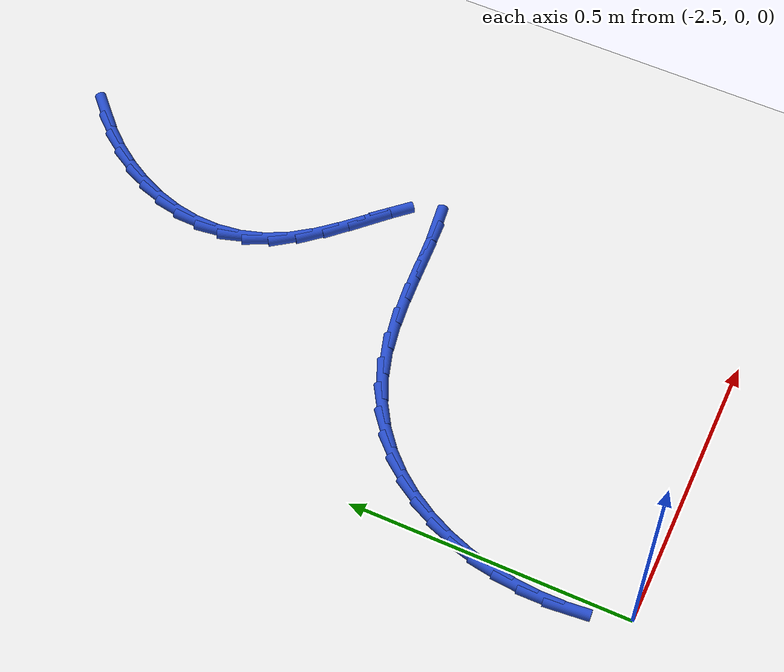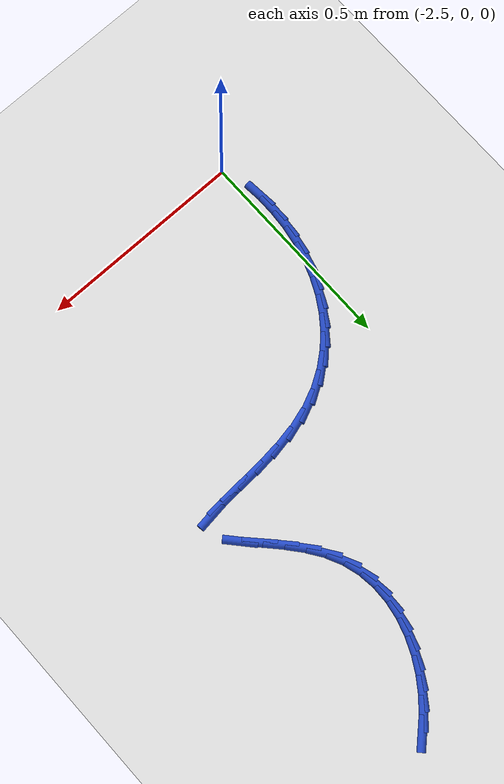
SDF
<sdf version="1.6">
 <world name="default">
  <model name="ground_plane">
   <static>1</static>
   <link name="link">
    <collision name="collision">
     <geometry><plane><normal>0 0 1</normal><size>100 100</size></plane></geometry>
     <surface><friction><ode><mu>100</mu><mu2>50</mu2></ode></friction></surface>
    </collision>
    <visual name="visual">
     <cast_shadows>0</cast_shadows>
     <geometry><plane><normal>0 0 1</normal><size>100 100</size></plane></geometry>
     <material>
      <script><uri>file://media/materials/scripts/gazebo.material</uri><name>Gazebo/WhiteGlow</name></script>
     </material>
    </visual>
   </link>
  </model>
  <model name="line">
   <link name="link_70">
    <pose>-1.9767544843478186 1.237692580501354 0.01 0 1.57 0.7592291743797539</pose>
    <collision name="collision">
     <geometry><cylinder><radius>0.01</radius><length>0.08</length></cylinder></geometry>
    </collision>
    <visual name="visual">
     <material>
      <script><name>Gazebo/Blue</name><uri>file://media/materials/scripts/gazebo.material</uri></script>
     </material>
     <geometry><cylinder><radius>0.01</radius><length>0.08</length></cylinder></geometry>
    </visual>
   </link>
   <link name="link_71">
    <pose>-2.007096831347578 1.2088981368848986 0.01 0 1.57 0.8576048717542797</pose>
    <collision name="collision">
     <geometry><cylinder><radius>0.01</radius><length>0.08</length></cylinder></geometry>
    </collision>
    <visual name="visual">
     <material>
      <script><name>Gazebo/Blue</name><uri>file://media/materials/scripts/gazebo.material</uri></script>
     </material>
     <geometry><cylinder><radius>0.01</radius><length>0.08</length></cylinder></geometry>
    </visual>
   </link>
   <link name="link_72">
    <pose>-2.035062959149668 1.176570837063848 0.01 0 1.57 0.9554254708043374</pose>
    <collision name="collision">
     <geometry><cylinder><radius>0.01</radius><length>0.08</length></cylinder></geometry>
    </collision>
    <visual name="visual">
     <material>
      <script><name>Gazebo/Blue</name><uri>file://media/materials/scripts/gazebo.material</uri></script>
     </material>
     <geometry><cylinder><radius>0.01</radius><length>0.08</length></cylinder></geometry>
    </visual>
   </link>
   <link name="link_73">
    <pose>-2.0600514864535526 1.1412235613860628 0.01 0 1.57 1.056072839593738</pose>
    <collision name="collision">
     <geometry><cylinder><radius>0.01</radius><length>0.08</length></cylinder></geometry>
    </collision>
    <visual name="visual">
     <material>
      <script><name>Gazebo/Blue</name><uri>file://media/materials/scripts/gazebo.material</uri></script>
     </material>
     <geometry><cylinder><radius>0.01</radius><length>0.08</length></cylinder></geometry>
    </visual>
   </link>
   <link name="link_74">
    <pose>-2.081461031958693 1.1033691901994038 0.01 0 1.57 1.1627030110061976</pose>
    <collision name="collision">
     <geometry><cylinder><radius>0.01</radius><length>0.08</length></cylinder></geometry>
    </collision>
    <visual name="visual">
     <material>
      <script><name>Gazebo/Blue</name><uri>file://media/materials/scripts/gazebo.material</uri></script>
     </material>
     <geometry><cylinder><radius>0.01</radius><length>0.08</length></cylinder></geometry>
    </visual>
   </link>
   <link name="link_75">
    <pose>-2.098690214364553 1.0635206038517315 0.01 0 1.57 1.27826414009599</pose>
    <collision name="collision">
     <geometry><cylinder><radius>0.01</radius><length>0.08</length></cylinder></geometry>
    </collision>
    <visual name="visual">
     <material>
      <script><name>Gazebo/Blue</name><uri>file://media/materials/scripts/gazebo.material</uri></script>
     </material>
     <geometry><cylinder><radius>0.01</radius><length>0.08</length></cylinder></geometry>
    </visual>
   </link>
   <link name="link_76">
    <pose>-2.111137652370596 1.0221906826909055 0.01 0 1.57 1.405312220309387</pose>
    <collision name="collision">
     <geometry><cylinder><radius>0.01</radius><length>0.08</length></cylinder></geometry>
    </collision>
    <visual name="visual">
     <material>
      <script><name>Gazebo/Blue</name><uri>file://media/materials/scripts/gazebo.material</uri></script>
     </material>
     <geometry><cylinder><radius>0.01</radius><length>0.08</length></cylinder></geometry>
    </visual>
   </link>
   <link name="link_77">
    <pose>-2.118201964676284 0.9798923070647879 0.01 0 1.57 1.5455454247379714</pose>
    <collision name="collision">
     <geometry><cylinder><radius>0.01</radius><length>0.08</length></cylinder></geometry>
    </collision>
    <visual name="visual">
     <material>
      <script><name>Gazebo/Blue</name><uri>file://media/materials/scripts/gazebo.material</uri></script>
     </material>
     <geometry><cylinder><radius>0.01</radius><length>0.08</length></cylinder></geometry>
    </visual>
   </link>
   <link name="link_78">
    <pose>-2.119281769981081 0.9371383573212388 0.01 0 1.57 -1.4425459288353755</pose>
    <collision name="collision">
     <geometry><cylinder><radius>0.01</radius><length>0.08</length></cylinder></geometry>
    </collision>
    <visual name="visual">
     <material>
      <script><name>Gazebo/Blue</name><uri>file://media/materials/scripts/gazebo.material</uri></script>
     </material>
     <geometry><cylinder><radius>0.01</radius><length>0.08</length></cylinder></geometry>
    </visual>
   </link>
   <link name="link_79">
    <pose>-2.1137756869844493 0.8944417138081177 0.01 0 1.57 -1.278133128932933</pose>
    <collision name="collision">
     <geometry><cylinder><radius>0.01</radius><length>0.08</length></cylinder></geometry>
    </collision>
    <visual name="visual">
     <material>
      <script><name>Gazebo/Blue</name><uri>file://media/materials/scripts/gazebo.material</uri></script>
     </material>
     <geometry><cylinder><radius>0.01</radius><length>0.08</length></cylinder></geometry>
    </visual>
   </link>
   <link name="link_80">
    <pose>-2.1010823343858505 0.8523152568732862 0.01 0 1.57 -1.108243184468283</pose>
    <collision name="collision">
     <geometry><cylinder><radius>0.01</radius><length>0.08</length></cylinder></geometry>
    </collision>
    <visual name="visual">
     <material>
      <script><name>Gazebo/Blue</name><uri>file://media/materials/scripts/gazebo.material</uri></script>
     </material>
     <geometry><cylinder><radius>0.01</radius><length>0.08</length></cylinder></geometry>
    </visual>
   </link>
   <link name="link_81">
    <pose>-2.080616970885217 0.8112722908518365 0.01 0 1.57 -0.9617065921817991</pose>
    <collision name="collision">
     <geometry><cylinder><radius>0.01</radius><length>0.08</length></cylinder></geometry>
    </collision>
    <visual name="visual">
     <material>
      <script><name>Gazebo/Blue</name><uri>file://media/materials/scripts/gazebo.material</uri></script>
     </material>
     <geometry><cylinder><radius>0.01</radius><length>0.08</length></cylinder></geometry>
    </visual>
   </link>
   <link name="link_82">
    <pose>-2.053124340687858 0.7718599953710827 0.01 0 1.57 -0.867904822204166</pose>
    <collision name="collision">
     <geometry><cylinder><radius>0.01</radius><length>0.08</length></cylinder></geometry>
    </collision>
    <visual name="visual">
     <material>
      <script><name>Gazebo/Blue</name><uri>file://media/materials/scripts/gazebo.material</uri></script>
     </material>
     <geometry><cylinder><radius>0.01</radius><length>0.08</length></cylinder></geometry>
    </visual>
   </link>
   <link name="link_83">
    <pose>-2.0216268749019872 0.7346835855232764 0.01 0 1.57 -0.8165272662750818</pose>
    <collision name="collision">
     <geometry><cylinder><radius>0.01</radius><length>0.08</length></cylinder></geometry>
    </collision>
    <visual name="visual">
     <material>
      <script><name>Gazebo/Blue</name><uri>file://media/materials/scripts/gazebo.material</uri></script>
     </material>
     <geometry><cylinder><radius>0.01</radius><length>0.08</length></cylinder></geometry>
    </visual>
   </link>
   <link name="link_84">
    <pose>-1.9893706910978315 0.7003539759319802 0.01 0 1.57 -0.8035870891360066</pose>
    <collision name="collision">
     <geometry><cylinder><radius>0.01</radius><length>0.08</length></cylinder></geometry>
    </collision>
    <visual name="visual">
     <material>
      <script><name>Gazebo/Blue</name><uri>file://media/materials/scripts/gazebo.material</uri></script>
     </material>
     <geometry><cylinder><radius>0.01</radius><length>0.08</length></cylinder></geometry>
    </visual>
   </link>
   <link name="link_85">
    <pose>-1.9596019068456187 0.6694820812207571 0.01 0 1.57 -0.8397913096755745</pose>
    <collision name="collision">
     <geometry><cylinder><radius>0.01</radius><length>0.08</length></cylinder></geometry>
    </collision>
    <visual name="visual">
     <material>
      <script><name>Gazebo/Blue</name><uri>file://media/materials/scripts/gazebo.material</uri></script>
     </material>
     <geometry><cylinder><radius>0.01</radius><length>0.08</length></cylinder></geometry>
    </visual>
   </link>
   <link name="link_90">
    <pose>-1.9523762090224026 0.5850980706292066 0.01 0 1.57 0.12566828416263573</pose>
    <collision name="collision">
     <geometry><cylinder><radius>0.01</radius><length>0.08</length></cylinder></geometry>
    </collision>
    <visual name="visual">
     <material>
      <script><name>Gazebo/Blue</name><uri>file://media/materials/scripts/gazebo.material</uri></script>
     </material>
     <geometry><cylinder><radius>0.01</radius><length>0.08</length></cylinder></geometry>
    </visual>
   </link>
   <link name="link_91">
    <pose>-1.9859479654082999 0.5808568153666116 0.01 0 1.57 0.0632473104853528</pose>
    <collision name="collision">
     <geometry><cylinder><radius>0.01</radius><length>0.08</length></cylinder></geometry>
    </collision>
    <visual name="visual">
     <material>
      <script><name>Gazebo/Blue</name><uri>file://media/materials/scripts/gazebo.material</uri></script>
     </material>
     <geometry><cylinder><radius>0.01</radius><length>0.08</length></cylinder></geometry>
    </visual>
   </link>
   <link name="link_92">
    <pose>-2.0273398980832846 0.5782353905893374 0.01 0 1.57 0.04939245278671325</pose>
    <collision name="collision">
     <geometry><cylinder><radius>0.01</radius><length>0.08</length></cylinder></geometry>
    </collision>
    <visual name="visual">
     <material>
      <script><name>Gazebo/Blue</name><uri>file://media/materials/scripts/gazebo.material</uri></script>
     </material>
     <geometry><cylinder><radius>0.01</radius><length>0.08</length></cylinder></geometry>
    </visual>
   </link>
   <link name="link_93">
    <pose>-2.0743060860869513 0.5759137270707475 0.01 0 1.57 0.06635048256645906</pose>
    <collision name="collision">
     <geometry><cylinder><radius>0.01</radius><length>0.08</length></cylinder></geometry>
    </collision>
    <visual name="visual">
     <material>
      <script><name>Gazebo/Blue</name><uri>file://media/materials/scripts/gazebo.material</uri></script>
     </material>
     <geometry><cylinder><radius>0.01</radius><length>0.08</length></cylinder></geometry>
    </visual>
   </link>
   <link name="link_94">
    <pose>-2.124600608458899 0.5725717555842054 0.01 0 1.57 0.11015346056883517</pose>
    <collision name="collision">
     <geometry><cylinder><radius>0.01</radius><length>0.08</length></cylinder></geometry>
    </collision>
    <visual name="visual">
     <material>
      <script><name>Gazebo/Blue</name><uri>file://media/materials/scripts/gazebo.material</uri></script>
     </material>
     <geometry><cylinder><radius>0.01</radius><length>0.08</length></cylinder></geometry>
    </visual>
   </link>
   <link name="link_95">
    <pose>-2.175977544238724 0.5668894069030745 0.01 0 1.57 0.18395812294698327</pose>
    <collision name="collision">
     <geometry><cylinder><radius>0.01</radius><length>0.08</length></cylinder></geometry>
    </collision>
    <visual name="visual">
     <material>
      <script><name>Gazebo/Blue</name><uri>file://media/materials/scripts/gazebo.material</uri></script>
     </material>
     <geometry><cylinder><radius>0.01</radius><length>0.08</length></cylinder></geometry>
    </visual>
   </link>
   <link name="link_96">
    <pose>-2.2261909724660227 0.5575466118007191 0.01 0 1.57 0.2942550114862895</pose>
    <collision name="collision">
     <geometry><cylinder><radius>0.01</radius><length>0.08</length></cylinder></geometry>
    </collision>
    <visual name="visual">
     <material>
      <script><name>Gazebo/Blue</name><uri>file://media/materials/scripts/gazebo.material</uri></script>
     </material>
     <geometry><cylinder><radius>0.01</radius><length>0.08</length></cylinder></geometry>
    </visual>
   </link>
   <link name="link_97">
    <pose>-2.2731239835218977 0.5433234395034396 0.01 0 1.57 0.4227066299343336</pose>
    <collision name="collision">
     <geometry><cylinder><radius>0.01</radius><length>0.08</length></cylinder></geometry>
    </collision>
    <visual name="visual">
     <material>
      <script><name>Gazebo/Blue</name><uri>file://media/materials/scripts/gazebo.material</uri></script>
     </material>
     <geometry><cylinder><radius>0.01</radius><length>0.08</length></cylinder></geometry>
    </visual>
   </link>
   <link name="link_98">
    <pose>-2.315997147198804 0.5240381091980478 0.01 0 1.57 0.5520699394514305</pose>
    <collision name="collision">
     <geometry><cylinder><radius>0.01</radius><length>0.08</length></cylinder></geometry>
    </collision>
    <visual name="visual">
     <material>
      <script><name>Gazebo/Blue</name><uri>file://media/materials/scripts/gazebo.material</uri></script>
     </material>
     <geometry><cylinder><radius>0.01</radius><length>0.08</length></cylinder></geometry>
    </visual>
   </link>
   <link name="link_99">
    <pose>-2.3548226372790286 0.5001232821657957 0.01 0 1.57 0.6793388754209444</pose>
    <collision name="collision">
     <geometry><cylinder><radius>0.01</radius><length>0.08</length></cylinder></geometry>
    </collision>
    <visual name="visual">
     <material>
      <script><name>Gazebo/Blue</name><uri>file://media/materials/scripts/gazebo.material</uri></script>
     </material>
     <geometry><cylinder><radius>0.01</radius><length>0.08</length></cylinder></geometry>
    </visual>
   </link>
   <link name="link_100">
    <pose>-2.3896229586753694 0.47201963869940017 0.01 0 1.57 0.8022222973451397</pose>
    <collision name="collision">
     <geometry><cylinder><radius>0.01</radius><length>0.08</length></cylinder></geometry>
    </collision>
    <visual name="visual">
     <material>
      <script><name>Gazebo/Blue</name><uri>file://media/materials/scripts/gazebo.material</uri></script>
     </material>
     <geometry><cylinder><radius>0.01</radius><length>0.08</length></cylinder></geometry>
    </visual>
   </link>
   <link name="link_101">
    <pose>-2.420420616300628 0.4401678590915779 0.01 0 1.57 0.9191887726935113</pose>
    <collision name="collision">
     <geometry><cylinder><radius>0.01</radius><length>0.08</length></cylinder></geometry>
    </collision>
    <visual name="visual">
     <material>
      <script><name>Gazebo/Blue</name><uri>file://media/materials/scripts/gazebo.material</uri></script>
     </material>
     <geometry><cylinder><radius>0.01</radius><length>0.08</length></cylinder></geometry>
    </visual>
   </link>
   <link name="link_102">
    <pose>-2.4472381150676026 0.4050086236350471 0.01 0 1.57 1.0295218484912654</pose>
    <collision name="collision">
     <geometry><cylinder><radius>0.01</radius><length>0.08</length></cylinder></geometry>
    </collision>
    <visual name="visual">
     <material>
      <script><name>Gazebo/Blue</name><uri>file://media/materials/scripts/gazebo.material</uri></script>
     </material>
     <geometry><cylinder><radius>0.01</radius><length>0.08</length></cylinder></geometry>
    </visual>
   </link>
   <link name="link_103">
    <pose>-2.470097959889092 0.36698261262252446 0.01 0 1.57 1.133214566473836</pose>
    <collision name="collision">
     <geometry><cylinder><radius>0.01</radius><length>0.08</length></cylinder></geometry>
    </collision>
    <visual name="visual">
     <material>
      <script><name>Gazebo/Blue</name><uri>file://media/materials/scripts/gazebo.material</uri></script>
     </material>
     <geometry><cylinder><radius>0.01</radius><length>0.08</length></cylinder></geometry>
    </visual>
   </link>
   <link name="link_104">
    <pose>-2.489022655677898 0.3265305063467271 0.01 0 1.57 1.2307893025706986</pose>
    <collision name="collision">
     <geometry><cylinder><radius>0.01</radius><length>0.08</length></cylinder></geometry>
    </collision>
    <visual name="visual">
     <material>
      <script><name>Gazebo/Blue</name><uri>file://media/materials/scripts/gazebo.material</uri></script>
     </material>
     <geometry><cylinder><radius>0.01</radius><length>0.08</length></cylinder></geometry>
    </visual>
   </link>
   <link name="link_105">
    <pose>-2.5040347073468183 0.2840929851003724 0.01 0 1.57 1.3231157649034964</pose>
    <collision name="collision">
     <geometry><cylinder><radius>0.01</radius><length>0.08</length></cylinder></geometry>
    </collision>
    <visual name="visual">
     <material>
      <script><name>Gazebo/Blue</name><uri>file://media/materials/scripts/gazebo.material</uri></script>
     </material>
     <geometry><cylinder><radius>0.01</radius><length>0.08</length></cylinder></geometry>
    </visual>
   </link>
   <link name="link_106">
    <pose>-2.5151566198086543 0.24011072917617635 0.01 0 1.57 1.411266012988621</pose>
    <collision name="collision">
     <geometry><cylinder><radius>0.01</radius><length>0.08</length></cylinder></geometry>
    </collision>
    <visual name="visual">
     <material>
      <script><name>Gazebo/Blue</name><uri>file://media/materials/scripts/gazebo.material</uri></script>
     </material>
     <geometry><cylinder><radius>0.01</radius><length>0.08</length></cylinder></geometry>
    </visual>
   </link>
   <link name="link_107">
    <pose>-2.5224108979762025 0.19502441886685815 0.01 0 1.57 1.496416369629569</pose>
    <collision name="collision">
     <geometry><cylinder><radius>0.01</radius><length>0.08</length></cylinder></geometry>
    </collision>
    <visual name="visual">
     <material>
      <script><name>Gazebo/Blue</name><uri>file://media/materials/scripts/gazebo.material</uri></script>
     </material>
     <geometry><cylinder><radius>0.01</radius><length>0.08</length></cylinder></geometry>
    </visual>
   </link>
   <link name="link_108">
    <pose>-2.5258200467622656 0.14927473446513417 0.01 0 1.57 -1.5618025668378828</pose>
    <collision name="collision">
     <geometry><cylinder><radius>0.01</radius><length>0.08</length></cylinder></geometry>
    </collision>
    <visual name="visual">
     <material>
      <script><name>Gazebo/Blue</name><uri>file://media/materials/scripts/gazebo.material</uri></script>
     </material>
     <geometry><cylinder><radius>0.01</radius><length>0.08</length></cylinder></geometry>
    </visual>
   </link>
   <link name="link_109">
    <pose>-2.5254065710796407 0.10330235626372142 0.01 0 1.57 -1.4789637466234096</pose>
    <collision name="collision">
     <geometry><cylinder><radius>0.01</radius><length>0.08</length></cylinder></geometry>
    </collision>
    <visual name="visual">
     <material>
      <script><name>Gazebo/Blue</name><uri>file://media/materials/scripts/gazebo.material</uri></script>
     </material>
     <geometry><cylinder><radius>0.01</radius><length>0.08</length></cylinder></geometry>
    </visual>
   </link>
  </model>
 </world>
</sdf>
